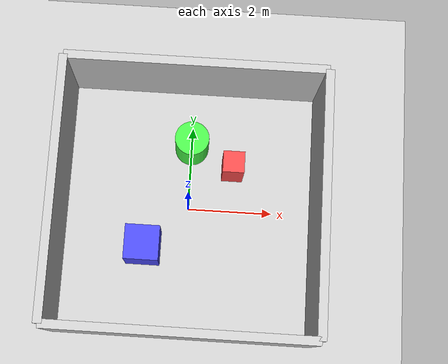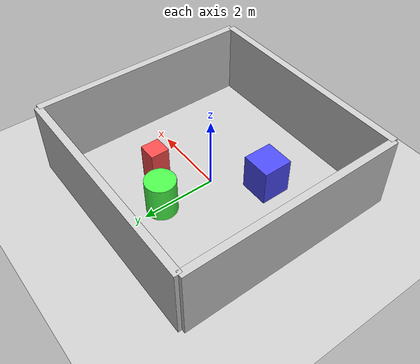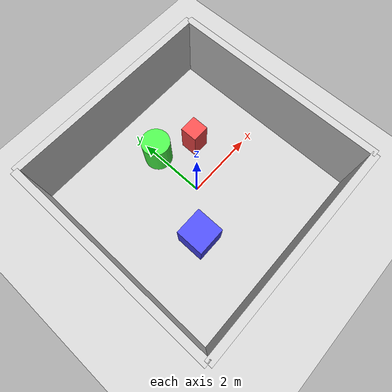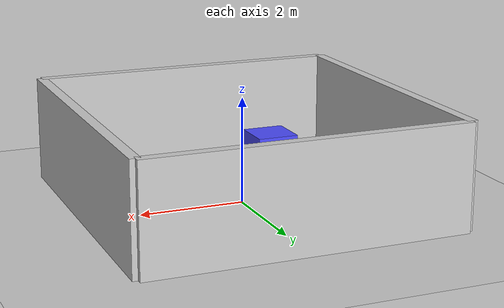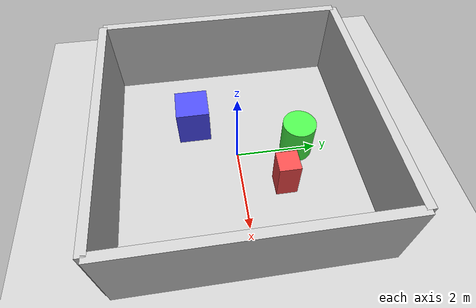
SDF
<?xml version="1.0" ?>
<sdf version="1.4">
  <world name="simple_room">
    <!-- Include the default Gazebo environment -->
    <include>
      <uri>model://ground_plane</uri>
    </include>

    <include>
      <uri>model://sun</uri>
    </include>

    <!-- Physics engine configuration -->
    <physics type="ode">
      <gravity>0 0 -9.8</gravity>
      <max_step_size>0.001</max_step_size>
      <real_time_factor>1.0</real_time_factor>
      <real_time_update_rate>1000.0</real_time_update_rate>
    </physics>

    <!-- Add some obstacles for navigation -->
    <!-- Wall along the back -->
    <model name="back_wall">
      <pose>0 3 1 0 0 0</pose>
      <link name="link">
        <collision name="collision">
          <geometry>
            <box>
              <size>6 0.2 2</size>
            </box>
          </geometry>
        </collision>
        <visual name="visual">
          <geometry>
            <box>
              <size>6 0.2 2</size>
            </box>
          </geometry>
          <material>
            <ambient>0.5 0.5 0.5 1</ambient>
            <diffuse>0.8 0.8 0.8 1</diffuse>
            <specular>0.1 0.1 0.1 1</specular>
          </material>
        </visual>
        <inertial>
          <mass>100</mass>
          <inertia>
            <ixx>1</ixx>
            <ixy>0</ixy>
            <ixz>0</ixz>
            <iyy>1</iyy>
            <iyz>0</iyz>
            <izz>1</izz>
          </inertia>
        </inertial>
      </link>
    </model>

    <!-- Wall along the right -->
    <model name="right_wall">
      <pose>3 0 1 0 0 0</pose>
      <link name="link">
        <collision name="collision">
          <geometry>
            <box>
              <size>0.2 6 2</size>
            </box>
          </geometry>
        </collision>
        <visual name="visual">
          <geometry>
            <box>
              <size>0.2 6 2</size>
            </box>
          </geometry>
          <material>
            <ambient>0.5 0.5 0.5 1</ambient>
            <diffuse>0.8 0.8 0.8 1</diffuse>
            <specular>0.1 0.1 0.1 1</specular>
          </material>
        </visual>
        <inertial>
          <mass>100</mass>
          <inertia>
            <ixx>1</ixx>
            <ixy>0</ixy>
            <ixz>0</ixz>
            <iyy>1</iyy>
            <iyz>0</iyz>
            <izz>1</izz>
          </inertia>
        </inertial>
      </link>
    </model>

    <!-- Wall along the left -->
    <model name="left_wall">
      <pose>-3 0 1 0 0 0</pose>
      <link name="link">
        <collision name="collision">
          <geometry>
            <box>
              <size>0.2 6 2</size>
            </box>
          </geometry>
        </collision>
        <visual name="visual">
          <geometry>
            <box>
              <size>0.2 6 2</size>
            </box>
          </geometry>
          <material>
            <ambient>0.5 0.5 0.5 1</ambient>
            <diffuse>0.8 0.8 0.8 1</diffuse>
            <specular>0.1 0.1 0.1 1</specular>
          </material>
        </visual>
        <inertial>
          <mass>100</mass>
          <inertia>
            <ixx>1</ixx>
            <ixy>0</ixy>
            <ixz>0</ixz>
            <iyy>1</iyy>
            <iyz>0</iyz>
            <izz>1</izz>
          </inertia>
        </inertial>
      </link>
    </model>

    <!-- Wall along the front -->
    <model name="front_wall">
      <pose>0 -3 1 0 0 0</pose>
      <link name="link">
        <collision name="collision">
          <geometry>
            <box>
              <size>6 0.2 2</size>
            </box>
          </geometry>
        </collision>
        <visual name="visual">
          <geometry>
            <box>
              <size>6 0.2 2</size>
            </box>
          </geometry>
          <material>
            <ambient>0.5 0.5 0.5 1</ambient>
            <diffuse>0.8 0.8 0.8 1</diffuse>
            <specular>0.1 0.1 0.1 1</specular>
          </material>
        </visual>
        <inertial>
          <mass>100</mass>
          <inertia>
            <ixx>1</ixx>
            <ixy>0</ixy>
            <ixz>0</ixz>
            <iyy>1</iyy>
            <iyz>0</iyz>
            <izz>1</izz>
          </inertia>
        </inertial>
      </link>
    </model>

    <!-- Add some obstacles in the room -->
    <model name="obstacle_1">
      <pose>1 1 0.5 0 0 0</pose>
      <link name="link">
        <collision name="collision">
          <geometry>
            <box>
              <size>0.5 0.5 1</size>
            </box>
          </geometry>
        </collision>
        <visual name="visual">
          <geometry>
            <box>
              <size>0.5 0.5 1</size>
            </box>
          </geometry>
          <material>
            <ambient>0.8 0.2 0.2 1</ambient>
            <diffuse>1 0.3 0.3 1</diffuse>
            <specular>0.1 0.1 0.1 1</specular>
          </material>
        </visual>
        <inertial>
          <mass>10</mass>
          <inertia>
            <ixx>1</ixx>
            <ixy>0</ixy>
            <ixz>0</ixz>
            <iyy>1</iyy>
            <iyz>0</iyz>
            <izz>1</izz>
          </inertia>
        </inertial>
      </link>
    </model>

    <model name="obstacle_2">
      <pose>-1 -1 0.5 0 0 0</pose>
      <link name="link">
        <collision name="collision">
          <geometry>
            <box>
              <size>0.8 0.8 1</size>
            </box>
          </geometry>
        </collision>
        <visual name="visual">
          <geometry>
            <box>
              <size>0.8 0.8 1</size>
            </box>
          </geometry>
          <material>
            <ambient>0.2 0.2 0.8 1</ambient>
            <diffuse>0.3 0.3 1 1</diffuse>
            <specular>0.1 0.1 0.1 1</specular>
          </material>
        </visual>
        <inertial>
          <mass>15</mass>
          <inertia>
            <ixx>1</ixx>
            <ixy>0</ixy>
            <ixz>0</ixz>
            <iyy>1</iyy>
            <iyz>0</iyz>
            <izz>1</izz>
          </inertia>
        </inertial>
      </link>
    </model>

    <model name="obstacle_3">
      <pose>0 1.5 0.5 0 0 0</pose>
      <link name="link">
        <collision name="collision">
          <geometry>
            <cylinder>
              <radius>0.4</radius>
              <length>1</length>
            </cylinder>
          </geometry>
        </collision>
        <visual name="visual">
          <geometry>
            <cylinder>
              <radius>0.4</radius>
              <length>1</length>
            </cylinder>
          </geometry>
          <material>
            <ambient>0.2 0.8 0.2 1</ambient>
            <diffuse>0.3 1 0.3 1</diffuse>
            <specular>0.1 0.1 0.1 1</specular>
          </material>
        </visual>
        <inertial>
          <mass>12</mass>
          <inertia>
            <ixx>1</ixx>
            <ixy>0</ixy>
            <ixz>0</ixz>
            <iyy>1</iyy>
            <iyz>0</iyz>
            <izz>1</izz>
          </inertia>
        </inertial>
      </link>
    </model>
  </world>
</sdf>
